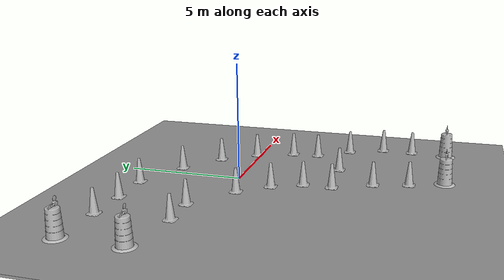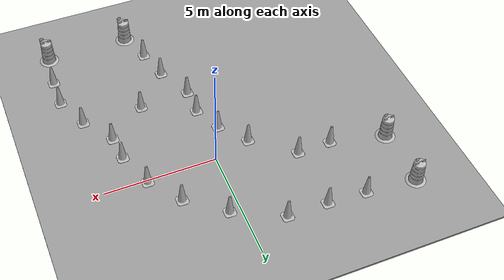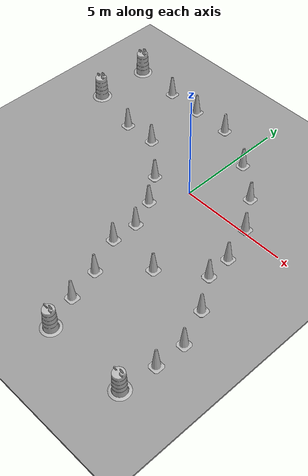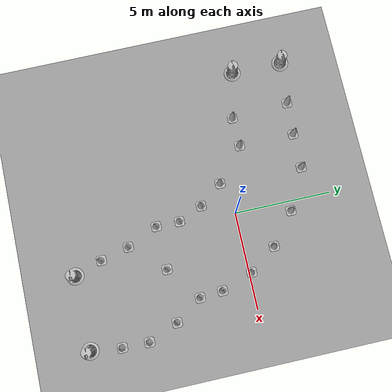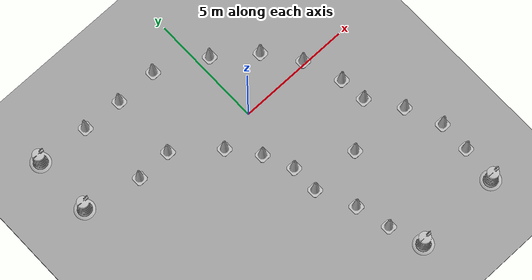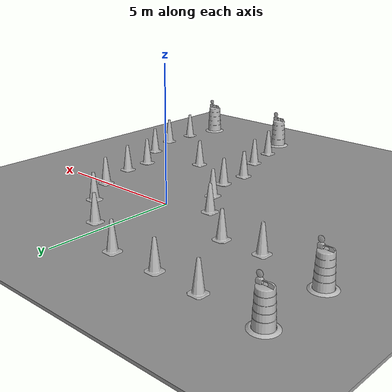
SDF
<sdf version="1.7">
 <world name="default">
  <light name="sun" type="directional">
   <pose>0 0 10 0 -0 0</pose>
   <diffuse>0.8 0.8 0.8 1</diffuse>
   <specular>0.2 0.2 0.2 1</specular>
   <attenuation>
    <range>1000</range>
    <constant>0.9</constant>
    <linear>0.01</linear>
    <quadratic>0.001</quadratic>
   </attenuation>
   <direction>-0.5 0.1 -0.9</direction>
   <spot><inner_angle>0</inner_angle><outer_angle>0</outer_angle><falloff>0</falloff></spot>
  </light>
  <model name="ground_plane">
   <static>1</static>
   <link name="link">
    <collision name="collision">
     <geometry><plane><normal>0 0 1</normal><size>100 100</size></plane></geometry>
     <surface>
      <contact><collide_bitmask>65535</collide_bitmask></contact>
      <friction><ode><mu>100</mu><mu2>50</mu2></ode></friction>
     </surface>
    </collision>
    <visual name="visual">
     <cast_shadows>0</cast_shadows>
     <geometry><plane><normal>0 0 1</normal><size>100 100</size></plane></geometry>
     <material>
      <script><uri>file://media/materials/scripts/gazebo.material</uri><name>Gazebo/Grey</name></script>
     </material>
    </visual>
   </link>
  </model>
  <gravity>0 0 -9.8</gravity>
  <magnetic_field>6e-06 2.3e-05 -4.2e-05</magnetic_field>
  <atmosphere type="adiabatic"/>
  <physics type="ode">
   <max_step_size>0.001</max_step_size>
   <real_time_factor>1</real_time_factor>
   <real_time_update_rate>1000</real_time_update_rate>
  </physics>
  <scene><ambient>0.4 0.4 0.4 1</ambient><background>0.7 0.7 0.7 1</background><shadows>1</shadows></scene>
  <audio><device>default</device></audio>
  <spherical_coordinates>
   <surface_model>EARTH_WGS84</surface_model>
   <latitude_deg>0</latitude_deg>
   <longitude_deg>0</longitude_deg>
   <elevation>0</elevation>
   <heading_deg>0</heading_deg>
  </spherical_coordinates>
  <model name="ground_plane_0">
   <static>1</static>
   <link name="link">
    <collision name="collision">
     <geometry><plane><normal>0 0 1</normal><size>100 100</size></plane></geometry>
     <surface>
      <contact><collide_bitmask>65535</collide_bitmask></contact>
      <friction><ode><mu>100</mu><mu2>50</mu2></ode></friction>
     </surface>
    </collision>
    <visual name="visual">
     <cast_shadows>0</cast_shadows>
     <geometry><plane><normal>0 0 1</normal><size>100 100</size></plane></geometry>
     <material>
      <script><uri>file://media/materials/scripts/gazebo.material</uri><name>Gazebo/Grey</name></script>
     </material>
    </visual>
   </link>
   <pose>11.9349 -7.5707 0 0 -0 0</pose>
  </model>
  <model name="Construction Cone">
   <link name="link">
    <collision name="collision">
     <geometry>
      <mesh><scale>10 10 10</scale><uri>model://construction_cone/meshes/construction_cone.dae</uri></mesh>
     </geometry>
    </collision>
    <visual name="visual">
     <geometry>
      <mesh><scale>10 10 10</scale><uri>model://construction_cone/meshes/construction_cone.dae</uri></mesh>
     </geometry>
    </visual>
    <inertial>
     <inertia><ixx>1</ixx><ixy>0</ixy><ixz>0</ixz><iyy>1</iyy><iyz>0</iyz><izz>1</izz></inertia>
     <mass>1</mass>
    </inertial>
   </link>
   <pose>-0.753634 -1.63764 -0 0 -1e-06 0</pose>
  </model>
  <model name="Construction Cone_0">
   <link name="link">
    <collision name="collision">
     <geometry>
      <mesh><scale>10 10 10</scale><uri>model://construction_cone/meshes/construction_cone.dae</uri></mesh>
     </geometry>
    </collision>
    <visual name="visual">
     <geometry>
      <mesh><scale>10 10 10</scale><uri>model://construction_cone/meshes/construction_cone.dae</uri></mesh>
     </geometry>
    </visual>
    <inertial>
     <inertia><ixx>1</ixx><ixy>0</ixy><ixz>0</ixz><iyy>1</iyy><iyz>0</iyz><izz>1</izz></inertia>
     <mass>1</mass>
    </inertial>
   </link>
   <pose>-0.207112 -2.89169 -0 0 -1e-06 0</pose>
  </model>
  <model name="Construction Cone_1">
   <link name="link">
    <collision name="collision">
     <geometry>
      <mesh><scale>10 10 10</scale><uri>model://construction_cone/meshes/construction_cone.dae</uri></mesh>
     </geometry>
    </collision>
    <visual name="visual">
     <geometry>
      <mesh><scale>10 10 10</scale><uri>model://construction_cone/meshes/construction_cone.dae</uri></mesh>
     </geometry>
    </visual>
    <inertial>
     <inertia><ixx>1</ixx><ixy>0</ixy><ixz>0</ixz><iyy>1</iyy><iyz>0</iyz><izz>1</izz></inertia>
     <mass>1</mass>
    </inertial>
   </link>
   <pose>3.7011 -1.51923 -0 0 -1e-06 0</pose>
  </model>
  <model name="Construction Cone_2">
   <link name="link">
    <collision name="collision">
     <geometry>
      <mesh><scale>10 10 10</scale><uri>model://construction_cone/meshes/construction_cone.dae</uri></mesh>
     </geometry>
    </collision>
    <visual name="visual">
     <geometry>
      <mesh><scale>10 10 10</scale><uri>model://construction_cone/meshes/construction_cone.dae</uri></mesh>
     </geometry>
    </visual>
    <inertial>
     <inertia><ixx>1</ixx><ixy>0</ixy><ixz>0</ixz><iyy>1</iyy><iyz>0</iyz><izz>1</izz></inertia>
     <mass>1</mass>
    </inertial>
   </link>
   <pose>0.495203 2.81805 -0 0 -1e-06 0</pose>
  </model>
  <model name="Construction Barrel">
   <link name="link">
    <inertial>
     <pose>0 0 0.4 0 -0 0</pose>
     <mass>500</mass>
     <inertia><ixx>51.2096</ixx><iyy>51.2096</iyy><izz>25</izz><ixy>0</ixy><ixz>0</ixz><iyz>0</iyz></inertia>
    </inertial>
    <collision name="collision">
     <geometry><mesh><uri>model://construction_barrel/meshes/construction_barrel.dae</uri></mesh></geometry>
    </collision>
    <visual name="visual">
     <geometry><mesh><uri>model://construction_barrel/meshes/construction_barrel.dae</uri></mesh></geometry>
    </visual>
   </link>
   <pose>-7.39925 4.16916 -0 0 0 -0.000288</pose>
  </model>
  <model name="Construction Barrel_0">
   <link name="link">
    <inertial>
     <pose>0 0 0.4 0 -0 0</pose>
     <mass>500</mass>
     <inertia><ixx>51.2096</ixx><iyy>51.2096</iyy><izz>25</izz><ixy>0</ixy><ixz>0</ixz><iyz>0</iyz></inertia>
    </inertial>
    <collision name="collision">
     <geometry><mesh><uri>model://construction_barrel/meshes/construction_barrel.dae</uri></mesh></geometry>
    </collision>
    <visual name="visual">
     <geometry><mesh><uri>model://construction_barrel/meshes/construction_barrel.dae</uri></mesh></geometry>
    </visual>
   </link>
   <pose>-7.40221 1.53986 -0 0 0 -0.000255</pose>
  </model>
  <model name="Construction Cone_6">
   <link name="link">
    <collision name="collision">
     <geometry>
      <mesh><scale>10 10 10</scale><uri>model://construction_cone/meshes/construction_cone.dae</uri></mesh>
     </geometry>
    </collision>
    <visual name="visual">
     <geometry>
      <mesh><scale>10 10 10</scale><uri>model://construction_cone/meshes/construction_cone.dae</uri></mesh>
     </geometry>
    </visual>
    <inertial>
     <inertia><ixx>1</ixx><ixy>0</ixy><ixz>0</ixz><iyy>1</iyy><iyz>0</iyz><izz>1</izz></inertia>
     <mass>1</mass>
    </inertial>
   </link>
   <pose>-4.9599 0.99103 -0 0 -1e-06 0</pose>
  </model>
  <model name="Construction Cone_7">
   <link name="link">
    <collision name="collision">
     <geometry>
      <mesh><scale>10 10 10</scale><uri>model://construction_cone/meshes/construction_cone.dae</uri></mesh>
     </geometry>
    </collision>
    <visual name="visual">
     <geometry>
      <mesh><scale>10 10 10</scale><uri>model://construction_cone/meshes/construction_cone.dae</uri></mesh>
     </geometry>
    </visual>
    <inertial>
     <inertia><ixx>1</ixx><ixy>0</ixy><ixz>0</ixz><iyy>1</iyy><iyz>0</iyz><izz>1</izz></inertia>
     <mass>1</mass>
    </inertial>
   </link>
   <pose>-3.42526 1.02075 -0 0 -1e-06 0</pose>
  </model>
  <model name="Construction Cone_8">
   <link name="link">
    <collision name="collision">
     <geometry>
      <mesh><scale>10 10 10</scale><uri>model://construction_cone/meshes/construction_cone.dae</uri></mesh>
     </geometry>
    </collision>
    <visual name="visual">
     <geometry>
      <mesh><scale>10 10 10</scale><uri>model://construction_cone/meshes/construction_cone.dae</uri></mesh>
     </geometry>
    </visual>
    <inertial>
     <inertia><ixx>1</ixx><ixy>0</ixy><ixz>0</ixz><iyy>1</iyy><iyz>0</iyz><izz>1</izz></inertia>
     <mass>1</mass>
    </inertial>
   </link>
   <pose>-5.15519 4.00014 -0 0 -1e-06 0</pose>
  </model>
  <model name="Construction Cone_9">
   <link name="link">
    <collision name="collision">
     <geometry>
      <mesh><scale>10 10 10</scale><uri>model://construction_cone/meshes/construction_cone.dae</uri></mesh>
     </geometry>
    </collision>
    <visual name="visual">
     <geometry>
      <mesh><scale>10 10 10</scale><uri>model://construction_cone/meshes/construction_cone.dae</uri></mesh>
     </geometry>
    </visual>
    <inertial>
     <inertia><ixx>1</ixx><ixy>0</ixy><ixz>0</ixz><iyy>1</iyy><iyz>0</iyz><izz>1</izz></inertia>
     <mass>1</mass>
    </inertial>
   </link>
   <pose>-3.42426 3.90499 -0 0 -1e-06 0</pose>
  </model>
  <model name="Construction Cone_10">
   <link name="link">
    <collision name="collision">
     <geometry>
      <mesh><scale>10 10 10</scale><uri>model://construction_cone/meshes/construction_cone.dae</uri></mesh>
     </geometry>
    </collision>
    <visual name="visual">
     <geometry>
      <mesh><scale>10 10 10</scale><uri>model://construction_cone/meshes/construction_cone.dae</uri></mesh>
     </geometry>
    </visual>
    <inertial>
     <inertia><ixx>1</ixx><ixy>0</ixy><ixz>0</ixz><iyy>1</iyy><iyz>0</iyz><izz>1</izz></inertia>
     <mass>1</mass>
    </inertial>
   </link>
   <pose>-1.68198 -0.422339 -0 0 -1e-06 0</pose>
  </model>
  <model name="Construction Cone_11">
   <link name="link">
    <collision name="collision">
     <geometry>
      <mesh><scale>10 10 10</scale><uri>model://construction_cone/meshes/construction_cone.dae</uri></mesh>
     </geometry>
    </collision>
    <visual name="visual">
     <geometry>
      <mesh><scale>10 10 10</scale><uri>model://construction_cone/meshes/construction_cone.dae</uri></mesh>
     </geometry>
    </visual>
    <inertial>
     <inertia><ixx>1</ixx><ixy>0</ixy><ixz>0</ixz><iyy>1</iyy><iyz>0</iyz><izz>1</izz></inertia>
     <mass>1</mass>
    </inertial>
   </link>
   <pose>3.79265 -2.69232 -0 0 -1e-06 0</pose>
  </model>
  <model name="Construction Cone_13">
   <link name="link">
    <collision name="collision">
     <geometry>
      <mesh><scale>10 10 10</scale><uri>model://construction_cone/meshes/construction_cone.dae</uri></mesh>
     </geometry>
    </collision>
    <visual name="visual">
     <geometry>
      <mesh><scale>10 10 10</scale><uri>model://construction_cone/meshes/construction_cone.dae</uri></mesh>
     </geometry>
    </visual>
    <inertial>
     <inertia><ixx>1</ixx><ixy>0</ixy><ixz>0</ixz><iyy>1</iyy><iyz>0</iyz><izz>1</izz></inertia>
     <mass>1</mass>
    </inertial>
   </link>
   <pose>-0.213752 -4.10958 -0 0 -1e-06 0</pose>
  </model>
  <model name="Construction Cone_15">
   <link name="link">
    <collision name="collision">
     <geometry>
      <mesh><scale>10 10 10</scale><uri>model://construction_cone/meshes/construction_cone.dae</uri></mesh>
     </geometry>
    </collision>
    <visual name="visual">
     <geometry>
      <mesh><scale>10 10 10</scale><uri>model://construction_cone/meshes/construction_cone.dae</uri></mesh>
     </geometry>
    </visual>
    <inertial>
     <inertia><ixx>1</ixx><ixy>0</ixy><ixz>0</ixz><iyy>1</iyy><iyz>0</iyz><izz>1</izz></inertia>
     <mass>1</mass>
    </inertial>
   </link>
   <pose>0.507215 -5.71568 -0 0 -1e-06 0</pose>
  </model>
  <model name="Construction Cone_16">
   <link name="link">
    <collision name="collision">
     <geometry>
      <mesh><scale>10 10 10</scale><uri>model://construction_cone/meshes/construction_cone.dae</uri></mesh>
     </geometry>
    </collision>
    <visual name="visual">
     <geometry>
      <mesh><scale>10 10 10</scale><uri>model://construction_cone/meshes/construction_cone.dae</uri></mesh>
     </geometry>
    </visual>
    <inertial>
     <inertia><ixx>1</ixx><ixy>0</ixy><ixz>0</ixz><iyy>1</iyy><iyz>0</iyz><izz>1</izz></inertia>
     <mass>1</mass>
    </inertial>
   </link>
   <pose>-1.60658 3.88884 -0 0 -1e-06 0</pose>
  </model>
  <model name="Construction Cone_5">
   <link name="link">
    <collision name="collision">
     <geometry>
      <mesh><scale>10 10 10</scale><uri>model://construction_cone/meshes/construction_cone.dae</uri></mesh>
     </geometry>
    </collision>
    <visual name="visual">
     <geometry>
      <mesh><scale>10 10 10</scale><uri>model://construction_cone/meshes/construction_cone.dae</uri></mesh>
     </geometry>
    </visual>
    <inertial>
     <inertia><ixx>1</ixx><ixy>0</ixy><ixz>0</ixz><iyy>1</iyy><iyz>0</iyz><izz>1</izz></inertia>
     <mass>1</mass>
    </inertial>
   </link>
   <pose>3.11819 0.123351 -1e-05 0 -0 0</pose>
  </model>
  <model name="Construction Cone_3">
   <link name="link">
    <collision name="collision">
     <geometry>
      <mesh><scale>10 10 10</scale><uri>model://construction_cone/meshes/construction_cone.dae</uri></mesh>
     </geometry>
    </collision>
    <visual name="visual">
     <geometry>
      <mesh><scale>10 10 10</scale><uri>model://construction_cone/meshes/construction_cone.dae</uri></mesh>
     </geometry>
    </visual>
    <inertial>
     <inertia><ixx>1</ixx><ixy>0</ixy><ixz>0</ixz><iyy>1</iyy><iyz>0</iyz><izz>1</izz></inertia>
     <mass>1</mass>
    </inertial>
   </link>
   <pose>2.09241 1.54407 -1e-05 0 -0 0</pose>
  </model>
  <model name="Construction Cone_4">
   <link name="link">
    <collision name="collision">
     <geometry>
      <mesh><scale>10 10 10</scale><uri>model://construction_cone/meshes/construction_cone.dae</uri></mesh>
     </geometry>
    </collision>
    <visual name="visual">
     <geometry>
      <mesh><scale>10 10 10</scale><uri>model://construction_cone/meshes/construction_cone.dae</uri></mesh>
     </geometry>
    </visual>
    <inertial>
     <inertia><ixx>1</ixx><ixy>0</ixy><ixz>0</ixz><iyy>1</iyy><iyz>0</iyz><izz>1</izz></inertia>
     <mass>1</mass>
    </inertial>
   </link>
   <pose>4.73947 -4.07563 -0 0 -1e-06 0</pose>
  </model>
  <model name="Construction Cone_12">
   <link name="link">
    <collision name="collision">
     <geometry>
      <mesh><scale>10 10 10</scale><uri>model://construction_cone/meshes/construction_cone.dae</uri></mesh>
     </geometry>
    </collision>
    <visual name="visual">
     <geometry>
      <mesh><scale>10 10 10</scale><uri>model://construction_cone/meshes/construction_cone.dae</uri></mesh>
     </geometry>
    </visual>
    <inertial>
     <inertia><ixx>1</ixx><ixy>0</ixy><ixz>0</ixz><iyy>1</iyy><iyz>0</iyz><izz>1</izz></inertia>
     <mass>1</mass>
    </inertial>
   </link>
   <pose>5.36819 -5.61306 -0 0 -1e-06 0</pose>
  </model>
  <model name="Construction Cone_14">
   <link name="link">
    <collision name="collision">
     <geometry>
      <mesh><scale>10 10 10</scale><uri>model://construction_cone/meshes/construction_cone.dae</uri></mesh>
     </geometry>
    </collision>
    <visual name="visual">
     <geometry>
      <mesh><scale>10 10 10</scale><uri>model://construction_cone/meshes/construction_cone.dae</uri></mesh>
     </geometry>
    </visual>
    <inertial>
     <inertia><ixx>1</ixx><ixy>0</ixy><ixz>0</ixz><iyy>1</iyy><iyz>0</iyz><izz>1</izz></inertia>
     <mass>1</mass>
    </inertial>
   </link>
   <pose>2.04419 -4.02339 -0 0 -1e-06 0</pose>
  </model>
  <model name="Construction Barrel_1">
   <link name="link">
    <inertial>
     <pose>0 0 0.4 0 -0 0</pose>
     <mass>500</mass>
     <inertia><ixx>51.2096</ixx><iyy>51.2096</iyy><izz>25</izz><ixy>0</ixy><ixz>0</ixz><iyz>0</iyz></inertia>
    </inertial>
    <collision name="collision">
     <geometry><mesh><uri>model://construction_barrel/meshes/construction_barrel.dae</uri></mesh></geometry>
    </collision>
    <visual name="visual">
     <geometry><mesh><uri>model://construction_barrel/meshes/construction_barrel.dae</uri></mesh></geometry>
    </visual>
   </link>
   <pose>1.37364 -8.61927 -2e-06 7e-06 -4e-06 -7.4e-05</pose>
  </model>
  <model name="Construction Barrel_2">
   <link name="link">
    <inertial>
     <pose>0 0 0.4 0 -0 0</pose>
     <mass>500</mass>
     <inertia><ixx>51.2096</ixx><iyy>51.2096</iyy><izz>25</izz><ixy>0</ixy><ixz>0</ixz><iyz>0</iyz></inertia>
    </inertial>
    <collision name="collision">
     <geometry><mesh><uri>model://construction_barrel/meshes/construction_barrel.dae</uri></mesh></geometry>
    </collision>
    <visual name="visual">
     <geometry><mesh><uri>model://construction_barrel/meshes/construction_barrel.dae</uri></mesh></geometry>
    </visual>
   </link>
   <pose>5.14919 -8.56248 -2e-06 7e-06 -4e-06 -6.6e-05</pose>
  </model>
  <model name="Construction Cone_17">
   <link name="link">
    <collision name="collision">
     <geometry>
      <mesh><scale>10 10 10</scale><uri>model://construction_cone/meshes/construction_cone.dae</uri></mesh>
     </geometry>
    </collision>
    <visual name="visual">
     <geometry>
      <mesh><scale>10 10 10</scale><uri>model://construction_cone/meshes/construction_cone.dae</uri></mesh>
     </geometry>
    </visual>
    <inertial>
     <inertia><ixx>1</ixx><ixy>0</ixy><ixz>0</ixz><iyy>1</iyy><iyz>0</iyz><izz>1</izz></inertia>
     <mass>1</mass>
    </inertial>
   </link>
   <pose>0.875329 -7.18207 -0 0 -1e-06 0</pose>
  </model>
  <model name="Construction Cone_18">
   <link name="link">
    <collision name="collision">
     <geometry>
      <mesh><scale>10 10 10</scale><uri>model://construction_cone/meshes/construction_cone.dae</uri></mesh>
     </geometry>
    </collision>
    <visual name="visual">
     <geometry>
      <mesh><scale>10 10 10</scale><uri>model://construction_cone/meshes/construction_cone.dae</uri></mesh>
     </geometry>
    </visual>
    <inertial>
     <inertia><ixx>1</ixx><ixy>0</ixy><ixz>0</ixz><iyy>1</iyy><iyz>0</iyz><izz>1</izz></inertia>
     <mass>1</mass>
    </inertial>
   </link>
   <pose>5.33519 -6.97938 -0 0 -1e-06 0</pose>
  </model>
 </world>
</sdf>
